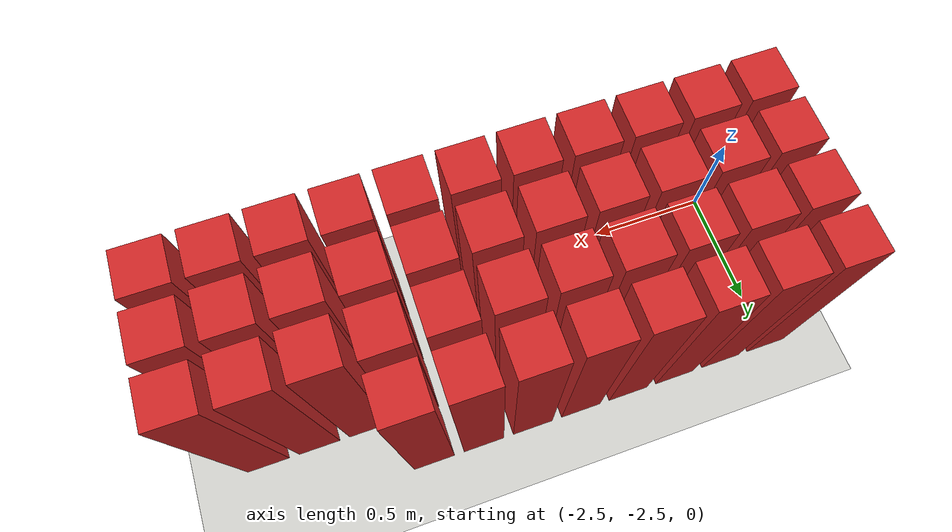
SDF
<sdf version="1.7">
 <world name="default">
  <model name="ground_plane">
   <static>1</static>
   <link name="link">
    <collision name="collision">
     <geometry><plane><normal>0 0 1</normal><size>100 100</size></plane></geometry>
     <surface>
      <contact><collide_bitmask>65535</collide_bitmask></contact>
      <friction><ode><mu>100</mu><mu2>50</mu2></ode></friction>
     </surface>
    </collision>
    <visual name="visual">
     <cast_shadows>0</cast_shadows>
     <geometry><plane><normal>0 0 1</normal><size>100 100</size></plane></geometry>
     <material>
      <script><uri>file://media/materials/scripts/gazebo.material</uri><name>Gazebo/CeilingTiled</name></script>
     </material>
    </visual>
   </link>
  </model>
  <model name="wall0">
   <link name="link">
    <pose>0 0 0.5 0 -0 0</pose>
    <inertial>
     <mass>0.5167</mass>
     <inertia>
      <ixx>0.000861167</ixx>
      <ixy>0</ixy>
      <ixz>0</ixz>
      <iyy>0.000861167</iyy>
      <iyz>0</iyz>
      <izz>0.000861167</izz>
     </inertia>
    </inertial>
    <collision name="collision">
     <geometry><box><size>0.21 0.21 1</size></box></geometry>
     <surface>
      <contact>
       <poissons_ratio>0.347</poissons_ratio>
       <elastic_modulus>8.8e+09</elastic_modulus>
       <ode><kp>100000</kp><kd>100</kd><max_vel>100</max_vel><min_depth>0.001</min_depth></ode>
      </contact>
      <friction>
       <torsional>
        <coefficient>1</coefficient>
        <use_patch_radius>0</use_patch_radius>
        <surface_radius>0.01</surface_radius>
       </torsional>
      </friction>
     </surface>
    </collision>
    <visual name="visual">
     <geometry><box><size>0.175 0.175 1</size></box></geometry>
     <material>
      <script><uri>file://media/materials/scripts/gazebo.material</uri><name>Gazebo/Red</name></script>
     </material>
    </visual>
   </link>
   <pose>-2.5 -2.5 0 0 -0 0</pose>
  </model>
  <model name="wall1">
   <link name="link">
    <pose>0 0 0.5 0 -0 0</pose>
    <inertial>
     <mass>0.5167</mass>
     <inertia>
      <ixx>0.000861167</ixx>
      <ixy>0</ixy>
      <ixz>0</ixz>
      <iyy>0.000861167</iyy>
      <iyz>0</iyz>
      <izz>0.000861167</izz>
     </inertia>
    </inertial>
    <collision name="collision">
     <geometry><box><size>0.21 0.21 1</size></box></geometry>
     <surface>
      <contact>
       <poissons_ratio>0.347</poissons_ratio>
       <elastic_modulus>8.8e+09</elastic_modulus>
       <ode><kp>100000</kp><kd>100</kd><max_vel>100</max_vel><min_depth>0.001</min_depth></ode>
      </contact>
      <friction>
       <torsional>
        <coefficient>1</coefficient>
        <use_patch_radius>0</use_patch_radius>
        <surface_radius>0.01</surface_radius>
       </torsional>
      </friction>
     </surface>
    </collision>
    <visual name="visual">
     <geometry><box><size>0.175 0.175 1</size></box></geometry>
     <material>
      <script><uri>file://media/materials/scripts/gazebo.material</uri><name>Gazebo/Red</name></script>
     </material>
    </visual>
   </link>
   <pose>-2.28261 -2.5 0 0 -0 0</pose>
  </model>
  <model name="wall2">
   <link name="link">
    <pose>0 0 0.5 0 -0 0</pose>
    <inertial>
     <mass>0.5167</mass>
     <inertia>
      <ixx>0.000861167</ixx>
      <ixy>0</ixy>
      <ixz>0</ixz>
      <iyy>0.000861167</iyy>
      <iyz>0</iyz>
      <izz>0.000861167</izz>
     </inertia>
    </inertial>
    <collision name="collision">
     <geometry><box><size>0.21 0.21 1</size></box></geometry>
     <surface>
      <contact>
       <poissons_ratio>0.347</poissons_ratio>
       <elastic_modulus>8.8e+09</elastic_modulus>
       <ode><kp>100000</kp><kd>100</kd><max_vel>100</max_vel><min_depth>0.001</min_depth></ode>
      </contact>
      <friction>
       <torsional>
        <coefficient>1</coefficient>
        <use_patch_radius>0</use_patch_radius>
        <surface_radius>0.01</surface_radius>
       </torsional>
      </friction>
     </surface>
    </collision>
    <visual name="visual">
     <geometry><box><size>0.175 0.175 1</size></box></geometry>
     <material>
      <script><uri>file://media/materials/scripts/gazebo.material</uri><name>Gazebo/Red</name></script>
     </material>
    </visual>
   </link>
   <pose>-2.06522 -2.5 0 0 -0 0</pose>
  </model>
  <model name="wall3">
   <link name="link">
    <pose>0 0 0.5 0 -0 0</pose>
    <inertial>
     <mass>0.5167</mass>
     <inertia>
      <ixx>0.000861167</ixx>
      <ixy>0</ixy>
      <ixz>0</ixz>
      <iyy>0.000861167</iyy>
      <iyz>0</iyz>
      <izz>0.000861167</izz>
     </inertia>
    </inertial>
    <collision name="collision">
     <geometry><box><size>0.21 0.21 1</size></box></geometry>
     <surface>
      <contact>
       <poissons_ratio>0.347</poissons_ratio>
       <elastic_modulus>8.8e+09</elastic_modulus>
       <ode><kp>100000</kp><kd>100</kd><max_vel>100</max_vel><min_depth>0.001</min_depth></ode>
      </contact>
      <friction>
       <torsional>
        <coefficient>1</coefficient>
        <use_patch_radius>0</use_patch_radius>
        <surface_radius>0.01</surface_radius>
       </torsional>
      </friction>
     </surface>
    </collision>
    <visual name="visual">
     <geometry><box><size>0.175 0.175 1</size></box></geometry>
     <material>
      <script><uri>file://media/materials/scripts/gazebo.material</uri><name>Gazebo/Red</name></script>
     </material>
    </visual>
   </link>
   <pose>-1.84783 -2.5 0 0 -0 0</pose>
  </model>
  <model name="wall4">
   <link name="link">
    <pose>0 0 0.5 0 -0 0</pose>
    <inertial>
     <mass>0.5167</mass>
     <inertia>
      <ixx>0.000861167</ixx>
      <ixy>0</ixy>
      <ixz>0</ixz>
      <iyy>0.000861167</iyy>
      <iyz>0</iyz>
      <izz>0.000861167</izz>
     </inertia>
    </inertial>
    <collision name="collision">
     <geometry><box><size>0.21 0.21 1</size></box></geometry>
     <surface>
      <contact>
       <poissons_ratio>0.347</poissons_ratio>
       <elastic_modulus>8.8e+09</elastic_modulus>
       <ode><kp>100000</kp><kd>100</kd><max_vel>100</max_vel><min_depth>0.001</min_depth></ode>
      </contact>
      <friction>
       <torsional>
        <coefficient>1</coefficient>
        <use_patch_radius>0</use_patch_radius>
        <surface_radius>0.01</surface_radius>
       </torsional>
      </friction>
     </surface>
    </collision>
    <visual name="visual">
     <geometry><box><size>0.175 0.175 1</size></box></geometry>
     <material>
      <script><uri>file://media/materials/scripts/gazebo.material</uri><name>Gazebo/Red</name></script>
     </material>
    </visual>
   </link>
   <pose>-1.63043 -2.5 0 0 -0 0</pose>
  </model>
  <model name="wall5">
   <link name="link">
    <pose>0 0 0.5 0 -0 0</pose>
    <inertial>
     <mass>0.5167</mass>
     <inertia>
      <ixx>0.000861167</ixx>
      <ixy>0</ixy>
      <ixz>0</ixz>
      <iyy>0.000861167</iyy>
      <iyz>0</iyz>
      <izz>0.000861167</izz>
     </inertia>
    </inertial>
    <collision name="collision">
     <geometry><box><size>0.21 0.21 1</size></box></geometry>
     <surface>
      <contact>
       <poissons_ratio>0.347</poissons_ratio>
       <elastic_modulus>8.8e+09</elastic_modulus>
       <ode><kp>100000</kp><kd>100</kd><max_vel>100</max_vel><min_depth>0.001</min_depth></ode>
      </contact>
      <friction>
       <torsional>
        <coefficient>1</coefficient>
        <use_patch_radius>0</use_patch_radius>
        <surface_radius>0.01</surface_radius>
       </torsional>
      </friction>
     </surface>
    </collision>
    <visual name="visual">
     <geometry><box><size>0.175 0.175 1</size></box></geometry>
     <material>
      <script><uri>file://media/materials/scripts/gazebo.material</uri><name>Gazebo/Red</name></script>
     </material>
    </visual>
   </link>
   <pose>-1.41304 -2.5 0 0 -0 0</pose>
  </model>
  <model name="wall6">
   <link name="link">
    <pose>0 0 0.5 0 -0 0</pose>
    <inertial>
     <mass>0.5167</mass>
     <inertia>
      <ixx>0.000861167</ixx>
      <ixy>0</ixy>
      <ixz>0</ixz>
      <iyy>0.000861167</iyy>
      <iyz>0</iyz>
      <izz>0.000861167</izz>
     </inertia>
    </inertial>
    <collision name="collision">
     <geometry><box><size>0.21 0.21 1</size></box></geometry>
     <surface>
      <contact>
       <poissons_ratio>0.347</poissons_ratio>
       <elastic_modulus>8.8e+09</elastic_modulus>
       <ode><kp>100000</kp><kd>100</kd><max_vel>100</max_vel><min_depth>0.001</min_depth></ode>
      </contact>
      <friction>
       <torsional>
        <coefficient>1</coefficient>
        <use_patch_radius>0</use_patch_radius>
        <surface_radius>0.01</surface_radius>
       </torsional>
      </friction>
     </surface>
    </collision>
    <visual name="visual">
     <geometry><box><size>0.175 0.175 1</size></box></geometry>
     <material>
      <script><uri>file://media/materials/scripts/gazebo.material</uri><name>Gazebo/Red</name></script>
     </material>
    </visual>
   </link>
   <pose>-1.19565 -2.5 0 0 -0 0</pose>
  </model>
  <model name="wall7">
   <link name="link">
    <pose>0 0 0.5 0 -0 0</pose>
    <inertial>
     <mass>0.5167</mass>
     <inertia>
      <ixx>0.000861167</ixx>
      <ixy>0</ixy>
      <ixz>0</ixz>
      <iyy>0.000861167</iyy>
      <iyz>0</iyz>
      <izz>0.000861167</izz>
     </inertia>
    </inertial>
    <collision name="collision">
     <geometry><box><size>0.21 0.21 1</size></box></geometry>
     <surface>
      <contact>
       <poissons_ratio>0.347</poissons_ratio>
       <elastic_modulus>8.8e+09</elastic_modulus>
       <ode><kp>100000</kp><kd>100</kd><max_vel>100</max_vel><min_depth>0.001</min_depth></ode>
      </contact>
      <friction>
       <torsional>
        <coefficient>1</coefficient>
        <use_patch_radius>0</use_patch_radius>
        <surface_radius>0.01</surface_radius>
       </torsional>
      </friction>
     </surface>
    </collision>
    <visual name="visual">
     <geometry><box><size>0.175 0.175 1</size></box></geometry>
     <material>
      <script><uri>file://media/materials/scripts/gazebo.material</uri><name>Gazebo/Red</name></script>
     </material>
    </visual>
   </link>
   <pose>-0.978261 -2.5 0 0 -0 0</pose>
  </model>
  <model name="wall8">
   <link name="link">
    <pose>0 0 0.5 0 -0 0</pose>
    <inertial>
     <mass>0.5167</mass>
     <inertia>
      <ixx>0.000861167</ixx>
      <ixy>0</ixy>
      <ixz>0</ixz>
      <iyy>0.000861167</iyy>
      <iyz>0</iyz>
      <izz>0.000861167</izz>
     </inertia>
    </inertial>
    <collision name="collision">
     <geometry><box><size>0.21 0.21 1</size></box></geometry>
     <surface>
      <contact>
       <poissons_ratio>0.347</poissons_ratio>
       <elastic_modulus>8.8e+09</elastic_modulus>
       <ode><kp>100000</kp><kd>100</kd><max_vel>100</max_vel><min_depth>0.001</min_depth></ode>
      </contact>
      <friction>
       <torsional>
        <coefficient>1</coefficient>
        <use_patch_radius>0</use_patch_radius>
        <surface_radius>0.01</surface_radius>
       </torsional>
      </friction>
     </surface>
    </collision>
    <visual name="visual">
     <geometry><box><size>0.175 0.175 1</size></box></geometry>
     <material>
      <script><uri>file://media/materials/scripts/gazebo.material</uri><name>Gazebo/Red</name></script>
     </material>
    </visual>
   </link>
   <pose>-0.76087 -2.5 0 0 -0 0</pose>
  </model>
  <model name="wall9">
   <link name="link">
    <pose>0 0 0.5 0 -0 0</pose>
    <inertial>
     <mass>0.5167</mass>
     <inertia>
      <ixx>0.000861167</ixx>
      <ixy>0</ixy>
      <ixz>0</ixz>
      <iyy>0.000861167</iyy>
      <iyz>0</iyz>
      <izz>0.000861167</izz>
     </inertia>
    </inertial>
    <collision name="collision">
     <geometry><box><size>0.21 0.21 1</size></box></geometry>
     <surface>
      <contact>
       <poissons_ratio>0.347</poissons_ratio>
       <elastic_modulus>8.8e+09</elastic_modulus>
       <ode><kp>100000</kp><kd>100</kd><max_vel>100</max_vel><min_depth>0.001</min_depth></ode>
      </contact>
      <friction>
       <torsional>
        <coefficient>1</coefficient>
        <use_patch_radius>0</use_patch_radius>
        <surface_radius>0.01</surface_radius>
       </torsional>
      </friction>
     </surface>
    </collision>
    <visual name="visual">
     <geometry><box><size>0.175 0.175 1</size></box></geometry>
     <material>
      <script><uri>file://media/materials/scripts/gazebo.material</uri><name>Gazebo/Red</name></script>
     </material>
    </visual>
   </link>
   <pose>-0.543478 -2.5 0 0 -0 0</pose>
  </model>
  <model name="wall10">
   <link name="link">
    <pose>0 0 0.5 0 -0 0</pose>
    <inertial>
     <mass>0.5167</mass>
     <inertia>
      <ixx>0.000861167</ixx>
      <ixy>0</ixy>
      <ixz>0</ixz>
      <iyy>0.000861167</iyy>
      <iyz>0</iyz>
      <izz>0.000861167</izz>
     </inertia>
    </inertial>
    <collision name="collision">
     <geometry><box><size>0.21 0.21 1</size></box></geometry>
     <surface>
      <contact>
       <poissons_ratio>0.347</poissons_ratio>
       <elastic_modulus>8.8e+09</elastic_modulus>
       <ode><kp>100000</kp><kd>100</kd><max_vel>100</max_vel><min_depth>0.001</min_depth></ode>
      </contact>
      <friction>
       <torsional>
        <coefficient>1</coefficient>
        <use_patch_radius>0</use_patch_radius>
        <surface_radius>0.01</surface_radius>
       </torsional>
      </friction>
     </surface>
    </collision>
    <visual name="visual">
     <geometry><box><size>0.175 0.175 1</size></box></geometry>
     <material>
      <script><uri>file://media/materials/scripts/gazebo.material</uri><name>Gazebo/Red</name></script>
     </material>
    </visual>
   </link>
   <pose>-0.326087 -2.5 0 0 -0 0</pose>
  </model>
  <model name="wall23">
   <link name="link">
    <pose>0 0 0.5 0 -0 0</pose>
    <inertial>
     <mass>0.5167</mass>
     <inertia>
      <ixx>0.000861167</ixx>
      <ixy>0</ixy>
      <ixz>0</ixz>
      <iyy>0.000861167</iyy>
      <iyz>0</iyz>
      <izz>0.000861167</izz>
     </inertia>
    </inertial>
    <collision name="collision">
     <geometry><box><size>0.21 0.21 1</size></box></geometry>
     <surface>
      <contact>
       <poissons_ratio>0.347</poissons_ratio>
       <elastic_modulus>8.8e+09</elastic_modulus>
       <ode><kp>100000</kp><kd>100</kd><max_vel>100</max_vel><min_depth>0.001</min_depth></ode>
      </contact>
      <friction>
       <torsional>
        <coefficient>1</coefficient>
        <use_patch_radius>0</use_patch_radius>
        <surface_radius>0.01</surface_radius>
       </torsional>
      </friction>
     </surface>
    </collision>
    <visual name="visual">
     <geometry><box><size>0.175 0.175 1</size></box></geometry>
     <material>
      <script><uri>file://media/materials/scripts/gazebo.material</uri><name>Gazebo/Red</name></script>
     </material>
    </visual>
   </link>
   <pose>-2.5 -2.28261 0 0 -0 0</pose>
  </model>
  <model name="wall24">
   <link name="link">
    <pose>0 0 0.5 0 -0 0</pose>
    <inertial>
     <mass>0.5167</mass>
     <inertia>
      <ixx>0.000861167</ixx>
      <ixy>0</ixy>
      <ixz>0</ixz>
      <iyy>0.000861167</iyy>
      <iyz>0</iyz>
      <izz>0.000861167</izz>
     </inertia>
    </inertial>
    <collision name="collision">
     <geometry><box><size>0.21 0.21 1</size></box></geometry>
     <surface>
      <contact>
       <poissons_ratio>0.347</poissons_ratio>
       <elastic_modulus>8.8e+09</elastic_modulus>
       <ode><kp>100000</kp><kd>100</kd><max_vel>100</max_vel><min_depth>0.001</min_depth></ode>
      </contact>
      <friction>
       <torsional>
        <coefficient>1</coefficient>
        <use_patch_radius>0</use_patch_radius>
        <surface_radius>0.01</surface_radius>
       </torsional>
      </friction>
     </surface>
    </collision>
    <visual name="visual">
     <geometry><box><size>0.175 0.175 1</size></box></geometry>
     <material>
      <script><uri>file://media/materials/scripts/gazebo.material</uri><name>Gazebo/Red</name></script>
     </material>
    </visual>
   </link>
   <pose>-2.28261 -2.28261 0 0 -0 0</pose>
  </model>
  <model name="wall25">
   <link name="link">
    <pose>0 0 0.5 0 -0 0</pose>
    <inertial>
     <mass>0.5167</mass>
     <inertia>
      <ixx>0.000861167</ixx>
      <ixy>0</ixy>
      <ixz>0</ixz>
      <iyy>0.000861167</iyy>
      <iyz>0</iyz>
      <izz>0.000861167</izz>
     </inertia>
    </inertial>
    <collision name="collision">
     <geometry><box><size>0.21 0.21 1</size></box></geometry>
     <surface>
      <contact>
       <poissons_ratio>0.347</poissons_ratio>
       <elastic_modulus>8.8e+09</elastic_modulus>
       <ode><kp>100000</kp><kd>100</kd><max_vel>100</max_vel><min_depth>0.001</min_depth></ode>
      </contact>
      <friction>
       <torsional>
        <coefficient>1</coefficient>
        <use_patch_radius>0</use_patch_radius>
        <surface_radius>0.01</surface_radius>
       </torsional>
      </friction>
     </surface>
    </collision>
    <visual name="visual">
     <geometry><box><size>0.175 0.175 1</size></box></geometry>
     <material>
      <script><uri>file://media/materials/scripts/gazebo.material</uri><name>Gazebo/Red</name></script>
     </material>
    </visual>
   </link>
   <pose>-2.06522 -2.28261 0 0 -0 0</pose>
  </model>
  <model name="wall26">
   <link name="link">
    <pose>0 0 0.5 0 -0 0</pose>
    <inertial>
     <mass>0.5167</mass>
     <inertia>
      <ixx>0.000861167</ixx>
      <ixy>0</ixy>
      <ixz>0</ixz>
      <iyy>0.000861167</iyy>
      <iyz>0</iyz>
      <izz>0.000861167</izz>
     </inertia>
    </inertial>
    <collision name="collision">
     <geometry><box><size>0.21 0.21 1</size></box></geometry>
     <surface>
      <contact>
       <poissons_ratio>0.347</poissons_ratio>
       <elastic_modulus>8.8e+09</elastic_modulus>
       <ode><kp>100000</kp><kd>100</kd><max_vel>100</max_vel><min_depth>0.001</min_depth></ode>
      </contact>
      <friction>
       <torsional>
        <coefficient>1</coefficient>
        <use_patch_radius>0</use_patch_radius>
        <surface_radius>0.01</surface_radius>
       </torsional>
      </friction>
     </surface>
    </collision>
    <visual name="visual">
     <geometry><box><size>0.175 0.175 1</size></box></geometry>
     <material>
      <script><uri>file://media/materials/scripts/gazebo.material</uri><name>Gazebo/Red</name></script>
     </material>
    </visual>
   </link>
   <pose>-1.84783 -2.28261 0 0 -0 0</pose>
  </model>
  <model name="wall27">
   <link name="link">
    <pose>0 0 0.5 0 -0 0</pose>
    <inertial>
     <mass>0.5167</mass>
     <inertia>
      <ixx>0.000861167</ixx>
      <ixy>0</ixy>
      <ixz>0</ixz>
      <iyy>0.000861167</iyy>
      <iyz>0</iyz>
      <izz>0.000861167</izz>
     </inertia>
    </inertial>
    <collision name="collision">
     <geometry><box><size>0.21 0.21 1</size></box></geometry>
     <surface>
      <contact>
       <poissons_ratio>0.347</poissons_ratio>
       <elastic_modulus>8.8e+09</elastic_modulus>
       <ode><kp>100000</kp><kd>100</kd><max_vel>100</max_vel><min_depth>0.001</min_depth></ode>
      </contact>
      <friction>
       <torsional>
        <coefficient>1</coefficient>
        <use_patch_radius>0</use_patch_radius>
        <surface_radius>0.01</surface_radius>
       </torsional>
      </friction>
     </surface>
    </collision>
    <visual name="visual">
     <geometry><box><size>0.175 0.175 1</size></box></geometry>
     <material>
      <script><uri>file://media/materials/scripts/gazebo.material</uri><name>Gazebo/Red</name></script>
     </material>
    </visual>
   </link>
   <pose>-1.63043 -2.28261 0 0 -0 0</pose>
  </model>
  <model name="wall28">
   <link name="link">
    <pose>0 0 0.5 0 -0 0</pose>
    <inertial>
     <mass>0.5167</mass>
     <inertia>
      <ixx>0.000861167</ixx>
      <ixy>0</ixy>
      <ixz>0</ixz>
      <iyy>0.000861167</iyy>
      <iyz>0</iyz>
      <izz>0.000861167</izz>
     </inertia>
    </inertial>
    <collision name="collision">
     <geometry><box><size>0.21 0.21 1</size></box></geometry>
     <surface>
      <contact>
       <poissons_ratio>0.347</poissons_ratio>
       <elastic_modulus>8.8e+09</elastic_modulus>
       <ode><kp>100000</kp><kd>100</kd><max_vel>100</max_vel><min_depth>0.001</min_depth></ode>
      </contact>
      <friction>
       <torsional>
        <coefficient>1</coefficient>
        <use_patch_radius>0</use_patch_radius>
        <surface_radius>0.01</surface_radius>
       </torsional>
      </friction>
     </surface>
    </collision>
    <visual name="visual">
     <geometry><box><size>0.175 0.175 1</size></box></geometry>
     <material>
      <script><uri>file://media/materials/scripts/gazebo.material</uri><name>Gazebo/Red</name></script>
     </material>
    </visual>
   </link>
   <pose>-1.41304 -2.28261 0 0 -0 0</pose>
  </model>
  <model name="wall29">
   <link name="link">
    <pose>0 0 0.5 0 -0 0</pose>
    <inertial>
     <mass>0.5167</mass>
     <inertia>
      <ixx>0.000861167</ixx>
      <ixy>0</ixy>
      <ixz>0</ixz>
      <iyy>0.000861167</iyy>
      <iyz>0</iyz>
      <izz>0.000861167</izz>
     </inertia>
    </inertial>
    <collision name="collision">
     <geometry><box><size>0.21 0.21 1</size></box></geometry>
     <surface>
      <contact>
       <poissons_ratio>0.347</poissons_ratio>
       <elastic_modulus>8.8e+09</elastic_modulus>
       <ode><kp>100000</kp><kd>100</kd><max_vel>100</max_vel><min_depth>0.001</min_depth></ode>
      </contact>
      <friction>
       <torsional>
        <coefficient>1</coefficient>
        <use_patch_radius>0</use_patch_radius>
        <surface_radius>0.01</surface_radius>
       </torsional>
      </friction>
     </surface>
    </collision>
    <visual name="visual">
     <geometry><box><size>0.175 0.175 1</size></box></geometry>
     <material>
      <script><uri>file://media/materials/scripts/gazebo.material</uri><name>Gazebo/Red</name></script>
     </material>
    </visual>
   </link>
   <pose>-1.19565 -2.28261 0 0 -0 0</pose>
  </model>
  <model name="wall30">
   <link name="link">
    <pose>0 0 0.5 0 -0 0</pose>
    <inertial>
     <mass>0.5167</mass>
     <inertia>
      <ixx>0.000861167</ixx>
      <ixy>0</ixy>
      <ixz>0</ixz>
      <iyy>0.000861167</iyy>
      <iyz>0</iyz>
      <izz>0.000861167</izz>
     </inertia>
    </inertial>
    <collision name="collision">
     <geometry><box><size>0.21 0.21 1</size></box></geometry>
     <surface>
      <contact>
       <poissons_ratio>0.347</poissons_ratio>
       <elastic_modulus>8.8e+09</elastic_modulus>
       <ode><kp>100000</kp><kd>100</kd><max_vel>100</max_vel><min_depth>0.001</min_depth></ode>
      </contact>
      <friction>
       <torsional>
        <coefficient>1</coefficient>
        <use_patch_radius>0</use_patch_radius>
        <surface_radius>0.01</surface_radius>
       </torsional>
      </friction>
     </surface>
    </collision>
    <visual name="visual">
     <geometry><box><size>0.175 0.175 1</size></box></geometry>
     <material>
      <script><uri>file://media/materials/scripts/gazebo.material</uri><name>Gazebo/Red</name></script>
     </material>
    </visual>
   </link>
   <pose>-0.978261 -2.28261 0 0 -0 0</pose>
  </model>
  <model name="wall31">
   <link name="link">
    <pose>0 0 0.5 0 -0 0</pose>
    <inertial>
     <mass>0.5167</mass>
     <inertia>
      <ixx>0.000861167</ixx>
      <ixy>0</ixy>
      <ixz>0</ixz>
      <iyy>0.000861167</iyy>
      <iyz>0</iyz>
      <izz>0.000861167</izz>
     </inertia>
    </inertial>
    <collision name="collision">
     <geometry><box><size>0.21 0.21 1</size></box></geometry>
     <surface>
      <contact>
       <poissons_ratio>0.347</poissons_ratio>
       <elastic_modulus>8.8e+09</elastic_modulus>
       <ode><kp>100000</kp><kd>100</kd><max_vel>100</max_vel><min_depth>0.001</min_depth></ode>
      </contact>
      <friction>
       <torsional>
        <coefficient>1</coefficient>
        <use_patch_radius>0</use_patch_radius>
        <surface_radius>0.01</surface_radius>
       </torsional>
      </friction>
     </surface>
    </collision>
    <visual name="visual">
     <geometry><box><size>0.175 0.175 1</size></box></geometry>
     <material>
      <script><uri>file://media/materials/scripts/gazebo.material</uri><name>Gazebo/Red</name></script>
     </material>
    </visual>
   </link>
   <pose>-0.76087 -2.28261 0 0 -0 0</pose>
  </model>
  <model name="wall32">
   <link name="link">
    <pose>0 0 0.5 0 -0 0</pose>
    <inertial>
     <mass>0.5167</mass>
     <inertia>
      <ixx>0.000861167</ixx>
      <ixy>0</ixy>
      <ixz>0</ixz>
      <iyy>0.000861167</iyy>
      <iyz>0</iyz>
      <izz>0.000861167</izz>
     </inertia>
    </inertial>
    <collision name="collision">
     <geometry><box><size>0.21 0.21 1</size></box></geometry>
     <surface>
      <contact>
       <poissons_ratio>0.347</poissons_ratio>
       <elastic_modulus>8.8e+09</elastic_modulus>
       <ode><kp>100000</kp><kd>100</kd><max_vel>100</max_vel><min_depth>0.001</min_depth></ode>
      </contact>
      <friction>
       <torsional>
        <coefficient>1</coefficient>
        <use_patch_radius>0</use_patch_radius>
        <surface_radius>0.01</surface_radius>
       </torsional>
      </friction>
     </surface>
    </collision>
    <visual name="visual">
     <geometry><box><size>0.175 0.175 1</size></box></geometry>
     <material>
      <script><uri>file://media/materials/scripts/gazebo.material</uri><name>Gazebo/Red</name></script>
     </material>
    </visual>
   </link>
   <pose>-0.543478 -2.28261 0 0 -0 0</pose>
  </model>
  <model name="wall33">
   <link name="link">
    <pose>0 0 0.5 0 -0 0</pose>
    <inertial>
     <mass>0.5167</mass>
     <inertia>
      <ixx>0.000861167</ixx>
      <ixy>0</ixy>
      <ixz>0</ixz>
      <iyy>0.000861167</iyy>
      <iyz>0</iyz>
      <izz>0.000861167</izz>
     </inertia>
    </inertial>
    <collision name="collision">
     <geometry><box><size>0.21 0.21 1</size></box></geometry>
     <surface>
      <contact>
       <poissons_ratio>0.347</poissons_ratio>
       <elastic_modulus>8.8e+09</elastic_modulus>
       <ode><kp>100000</kp><kd>100</kd><max_vel>100</max_vel><min_depth>0.001</min_depth></ode>
      </contact>
      <friction>
       <torsional>
        <coefficient>1</coefficient>
        <use_patch_radius>0</use_patch_radius>
        <surface_radius>0.01</surface_radius>
       </torsional>
      </friction>
     </surface>
    </collision>
    <visual name="visual">
     <geometry><box><size>0.175 0.175 1</size></box></geometry>
     <material>
      <script><uri>file://media/materials/scripts/gazebo.material</uri><name>Gazebo/Red</name></script>
     </material>
    </visual>
   </link>
   <pose>-0.326087 -2.28261 0 0 -0 0</pose>
  </model>
  <model name="wall46">
   <link name="link">
    <pose>0 0 0.5 0 -0 0</pose>
    <inertial>
     <mass>0.5167</mass>
     <inertia>
      <ixx>0.000861167</ixx>
      <ixy>0</ixy>
      <ixz>0</ixz>
      <iyy>0.000861167</iyy>
      <iyz>0</iyz>
      <izz>0.000861167</izz>
     </inertia>
    </inertial>
    <collision name="collision">
     <geometry><box><size>0.21 0.21 1</size></box></geometry>
     <surface>
      <contact>
       <poissons_ratio>0.347</poissons_ratio>
       <elastic_modulus>8.8e+09</elastic_modulus>
       <ode><kp>100000</kp><kd>100</kd><max_vel>100</max_vel><min_depth>0.001</min_depth></ode>
      </contact>
      <friction>
       <torsional>
        <coefficient>1</coefficient>
        <use_patch_radius>0</use_patch_radius>
        <surface_radius>0.01</surface_radius>
       </torsional>
      </friction>
     </surface>
    </collision>
    <visual name="visual">
     <geometry><box><size>0.175 0.175 1</size></box></geometry>
     <material>
      <script><uri>file://media/materials/scripts/gazebo.material</uri><name>Gazebo/Red</name></script>
     </material>
    </visual>
   </link>
   <pose>-2.5 -2.06522 0 0 -0 0</pose>
  </model>
  <model name="wall47">
   <link name="link">
    <pose>0 0 0.5 0 -0 0</pose>
    <inertial>
     <mass>0.5167</mass>
     <inertia>
      <ixx>0.000861167</ixx>
      <ixy>0</ixy>
      <ixz>0</ixz>
      <iyy>0.000861167</iyy>
      <iyz>0</iyz>
      <izz>0.000861167</izz>
     </inertia>
    </inertial>
    <collision name="collision">
     <geometry><box><size>0.21 0.21 1</size></box></geometry>
     <surface>
      <contact>
       <poissons_ratio>0.347</poissons_ratio>
       <elastic_modulus>8.8e+09</elastic_modulus>
       <ode><kp>100000</kp><kd>100</kd><max_vel>100</max_vel><min_depth>0.001</min_depth></ode>
      </contact>
      <friction>
       <torsional>
        <coefficient>1</coefficient>
        <use_patch_radius>0</use_patch_radius>
        <surface_radius>0.01</surface_radius>
       </torsional>
      </friction>
     </surface>
    </collision>
    <visual name="visual">
     <geometry><box><size>0.175 0.175 1</size></box></geometry>
     <material>
      <script><uri>file://media/materials/scripts/gazebo.material</uri><name>Gazebo/Red</name></script>
     </material>
    </visual>
   </link>
   <pose>-2.28261 -2.06522 0 0 -0 0</pose>
  </model>
  <model name="wall48">
   <link name="link">
    <pose>0 0 0.5 0 -0 0</pose>
    <inertial>
     <mass>0.5167</mass>
     <inertia>
      <ixx>0.000861167</ixx>
      <ixy>0</ixy>
      <ixz>0</ixz>
      <iyy>0.000861167</iyy>
      <iyz>0</iyz>
      <izz>0.000861167</izz>
     </inertia>
    </inertial>
    <collision name="collision">
     <geometry><box><size>0.21 0.21 1</size></box></geometry>
     <surface>
      <contact>
       <poissons_ratio>0.347</poissons_ratio>
       <elastic_modulus>8.8e+09</elastic_modulus>
       <ode><kp>100000</kp><kd>100</kd><max_vel>100</max_vel><min_depth>0.001</min_depth></ode>
      </contact>
      <friction>
       <torsional>
        <coefficient>1</coefficient>
        <use_patch_radius>0</use_patch_radius>
        <surface_radius>0.01</surface_radius>
       </torsional>
      </friction>
     </surface>
    </collision>
    <visual name="visual">
     <geometry><box><size>0.175 0.175 1</size></box></geometry>
     <material>
      <script><uri>file://media/materials/scripts/gazebo.material</uri><name>Gazebo/Red</name></script>
     </material>
    </visual>
   </link>
   <pose>-2.06522 -2.06522 0 0 -0 0</pose>
  </model>
  <model name="wall49">
   <link name="link">
    <pose>0 0 0.5 0 -0 0</pose>
    <inertial>
     <mass>0.5167</mass>
     <inertia>
      <ixx>0.000861167</ixx>
      <ixy>0</ixy>
      <ixz>0</ixz>
      <iyy>0.000861167</iyy>
      <iyz>0</iyz>
      <izz>0.000861167</izz>
     </inertia>
    </inertial>
    <collision name="collision">
     <geometry><box><size>0.21 0.21 1</size></box></geometry>
     <surface>
      <contact>
       <poissons_ratio>0.347</poissons_ratio>
       <elastic_modulus>8.8e+09</elastic_modulus>
       <ode><kp>100000</kp><kd>100</kd><max_vel>100</max_vel><min_depth>0.001</min_depth></ode>
      </contact>
      <friction>
       <torsional>
        <coefficient>1</coefficient>
        <use_patch_radius>0</use_patch_radius>
        <surface_radius>0.01</surface_radius>
       </torsional>
      </friction>
     </surface>
    </collision>
    <visual name="visual">
     <geometry><box><size>0.175 0.175 1</size></box></geometry>
     <material>
      <script><uri>file://media/materials/scripts/gazebo.material</uri><name>Gazebo/Red</name></script>
     </material>
    </visual>
   </link>
   <pose>-1.84783 -2.06522 0 0 -0 0</pose>
  </model>
  <model name="wall50">
   <link name="link">
    <pose>0 0 0.5 0 -0 0</pose>
    <inertial>
     <mass>0.5167</mass>
     <inertia>
      <ixx>0.000861167</ixx>
      <ixy>0</ixy>
      <ixz>0</ixz>
      <iyy>0.000861167</iyy>
      <iyz>0</iyz>
      <izz>0.000861167</izz>
     </inertia>
    </inertial>
    <collision name="collision">
     <geometry><box><size>0.21 0.21 1</size></box></geometry>
     <surface>
      <contact>
       <poissons_ratio>0.347</poissons_ratio>
       <elastic_modulus>8.8e+09</elastic_modulus>
       <ode><kp>100000</kp><kd>100</kd><max_vel>100</max_vel><min_depth>0.001</min_depth></ode>
      </contact>
      <friction>
       <torsional>
        <coefficient>1</coefficient>
        <use_patch_radius>0</use_patch_radius>
        <surface_radius>0.01</surface_radius>
       </torsional>
      </friction>
     </surface>
    </collision>
    <visual name="visual">
     <geometry><box><size>0.175 0.175 1</size></box></geometry>
     <material>
      <script><uri>file://media/materials/scripts/gazebo.material</uri><name>Gazebo/Red</name></script>
     </material>
    </visual>
   </link>
   <pose>-1.63043 -2.06522 0 0 -0 0</pose>
  </model>
  <model name="wall51">
   <link name="link">
    <pose>0 0 0.5 0 -0 0</pose>
    <inertial>
     <mass>0.5167</mass>
     <inertia>
      <ixx>0.000861167</ixx>
      <ixy>0</ixy>
      <ixz>0</ixz>
      <iyy>0.000861167</iyy>
      <iyz>0</iyz>
      <izz>0.000861167</izz>
     </inertia>
    </inertial>
    <collision name="collision">
     <geometry><box><size>0.21 0.21 1</size></box></geometry>
     <surface>
      <contact>
       <poissons_ratio>0.347</poissons_ratio>
       <elastic_modulus>8.8e+09</elastic_modulus>
       <ode><kp>100000</kp><kd>100</kd><max_vel>100</max_vel><min_depth>0.001</min_depth></ode>
      </contact>
      <friction>
       <torsional>
        <coefficient>1</coefficient>
        <use_patch_radius>0</use_patch_radius>
        <surface_radius>0.01</surface_radius>
       </torsional>
      </friction>
     </surface>
    </collision>
    <visual name="visual">
     <geometry><box><size>0.175 0.175 1</size></box></geometry>
     <material>
      <script><uri>file://media/materials/scripts/gazebo.material</uri><name>Gazebo/Red</name></script>
     </material>
    </visual>
   </link>
   <pose>-1.41304 -2.06522 0 0 -0 0</pose>
  </model>
  <model name="wall52">
   <link name="link">
    <pose>0 0 0.5 0 -0 0</pose>
    <inertial>
     <mass>0.5167</mass>
     <inertia>
      <ixx>0.000861167</ixx>
      <ixy>0</ixy>
      <ixz>0</ixz>
      <iyy>0.000861167</iyy>
      <iyz>0</iyz>
      <izz>0.000861167</izz>
     </inertia>
    </inertial>
    <collision name="collision">
     <geometry><box><size>0.21 0.21 1</size></box></geometry>
     <surface>
      <contact>
       <poissons_ratio>0.347</poissons_ratio>
       <elastic_modulus>8.8e+09</elastic_modulus>
       <ode><kp>100000</kp><kd>100</kd><max_vel>100</max_vel><min_depth>0.001</min_depth></ode>
      </contact>
      <friction>
       <torsional>
        <coefficient>1</coefficient>
        <use_patch_radius>0</use_patch_radius>
        <surface_radius>0.01</surface_radius>
       </torsional>
      </friction>
     </surface>
    </collision>
    <visual name="visual">
     <geometry><box><size>0.175 0.175 1</size></box></geometry>
     <material>
      <script><uri>file://media/materials/scripts/gazebo.material</uri><name>Gazebo/Red</name></script>
     </material>
    </visual>
   </link>
   <pose>-1.19565 -2.06522 0 0 -0 0</pose>
  </model>
  <model name="wall53">
   <link name="link">
    <pose>0 0 0.5 0 -0 0</pose>
    <inertial>
     <mass>0.5167</mass>
     <inertia>
      <ixx>0.000861167</ixx>
      <ixy>0</ixy>
      <ixz>0</ixz>
      <iyy>0.000861167</iyy>
      <iyz>0</iyz>
      <izz>0.000861167</izz>
     </inertia>
    </inertial>
    <collision name="collision">
     <geometry><box><size>0.21 0.21 1</size></box></geometry>
     <surface>
      <contact>
       <poissons_ratio>0.347</poissons_ratio>
       <elastic_modulus>8.8e+09</elastic_modulus>
       <ode><kp>100000</kp><kd>100</kd><max_vel>100</max_vel><min_depth>0.001</min_depth></ode>
      </contact>
      <friction>
       <torsional>
        <coefficient>1</coefficient>
        <use_patch_radius>0</use_patch_radius>
        <surface_radius>0.01</surface_radius>
       </torsional>
      </friction>
     </surface>
    </collision>
    <visual name="visual">
     <geometry><box><size>0.175 0.175 1</size></box></geometry>
     <material>
      <script><uri>file://media/materials/scripts/gazebo.material</uri><name>Gazebo/Red</name></script>
     </material>
    </visual>
   </link>
   <pose>-0.978261 -2.06522 0 0 -0 0</pose>
  </model>
  <model name="wall54">
   <link name="link">
    <pose>0 0 0.5 0 -0 0</pose>
    <inertial>
     <mass>0.5167</mass>
     <inertia>
      <ixx>0.000861167</ixx>
      <ixy>0</ixy>
      <ixz>0</ixz>
      <iyy>0.000861167</iyy>
      <iyz>0</iyz>
      <izz>0.000861167</izz>
     </inertia>
    </inertial>
    <collision name="collision">
     <geometry><box><size>0.21 0.21 1</size></box></geometry>
     <surface>
      <contact>
       <poissons_ratio>0.347</poissons_ratio>
       <elastic_modulus>8.8e+09</elastic_modulus>
       <ode><kp>100000</kp><kd>100</kd><max_vel>100</max_vel><min_depth>0.001</min_depth></ode>
      </contact>
      <friction>
       <torsional>
        <coefficient>1</coefficient>
        <use_patch_radius>0</use_patch_radius>
        <surface_radius>0.01</surface_radius>
       </torsional>
      </friction>
     </surface>
    </collision>
    <visual name="visual">
     <geometry><box><size>0.175 0.175 1</size></box></geometry>
     <material>
      <script><uri>file://media/materials/scripts/gazebo.material</uri><name>Gazebo/Red</name></script>
     </material>
    </visual>
   </link>
   <pose>-0.76087 -2.06522 0 0 -0 0</pose>
  </model>
  <model name="wall55">
   <link name="link">
    <pose>0 0 0.5 0 -0 0</pose>
    <inertial>
     <mass>0.5167</mass>
     <inertia>
      <ixx>0.000861167</ixx>
      <ixy>0</ixy>
      <ixz>0</ixz>
      <iyy>0.000861167</iyy>
      <iyz>0</iyz>
      <izz>0.000861167</izz>
     </inertia>
    </inertial>
    <collision name="collision">
     <geometry><box><size>0.21 0.21 1</size></box></geometry>
     <surface>
      <contact>
       <poissons_ratio>0.347</poissons_ratio>
       <elastic_modulus>8.8e+09</elastic_modulus>
       <ode><kp>100000</kp><kd>100</kd><max_vel>100</max_vel><min_depth>0.001</min_depth></ode>
      </contact>
      <friction>
       <torsional>
        <coefficient>1</coefficient>
        <use_patch_radius>0</use_patch_radius>
        <surface_radius>0.01</surface_radius>
       </torsional>
      </friction>
     </surface>
    </collision>
    <visual name="visual">
     <geometry><box><size>0.175 0.175 1</size></box></geometry>
     <material>
      <script><uri>file://media/materials/scripts/gazebo.material</uri><name>Gazebo/Red</name></script>
     </material>
    </visual>
   </link>
   <pose>-0.543478 -2.06522 0 0 -0 0</pose>
  </model>
  <model name="wall56">
   <link name="link">
    <pose>0 0 0.5 0 -0 0</pose>
    <inertial>
     <mass>0.5167</mass>
     <inertia>
      <ixx>0.000861167</ixx>
      <ixy>0</ixy>
      <ixz>0</ixz>
      <iyy>0.000861167</iyy>
      <iyz>0</iyz>
      <izz>0.000861167</izz>
     </inertia>
    </inertial>
    <collision name="collision">
     <geometry><box><size>0.21 0.21 1</size></box></geometry>
     <surface>
      <contact>
       <poissons_ratio>0.347</poissons_ratio>
       <elastic_modulus>8.8e+09</elastic_modulus>
       <ode><kp>100000</kp><kd>100</kd><max_vel>100</max_vel><min_depth>0.001</min_depth></ode>
      </contact>
      <friction>
       <torsional>
        <coefficient>1</coefficient>
        <use_patch_radius>0</use_patch_radius>
        <surface_radius>0.01</surface_radius>
       </torsional>
      </friction>
     </surface>
    </collision>
    <visual name="visual">
     <geometry><box><size>0.175 0.175 1</size></box></geometry>
     <material>
      <script><uri>file://media/materials/scripts/gazebo.material</uri><name>Gazebo/Red</name></script>
     </material>
    </visual>
   </link>
   <pose>-0.326087 -2.06522 0 0 -0 0</pose>
  </model>
  <model name="wall69">
   <link name="link">
    <pose>0 0 0.5 0 -0 0</pose>
    <inertial>
     <mass>0.5167</mass>
     <inertia>
      <ixx>0.000861167</ixx>
      <ixy>0</ixy>
      <ixz>0</ixz>
      <iyy>0.000861167</iyy>
      <iyz>0</iyz>
      <izz>0.000861167</izz>
     </inertia>
    </inertial>
    <collision name="collision">
     <geometry><box><size>0.21 0.21 1</size></box></geometry>
     <surface>
      <contact>
       <poissons_ratio>0.347</poissons_ratio>
       <elastic_modulus>8.8e+09</elastic_modulus>
       <ode><kp>100000</kp><kd>100</kd><max_vel>100</max_vel><min_depth>0.001</min_depth></ode>
      </contact>
      <friction>
       <torsional>
        <coefficient>1</coefficient>
        <use_patch_radius>0</use_patch_radius>
        <surface_radius>0.01</surface_radius>
       </torsional>
      </friction>
     </surface>
    </collision>
    <visual name="visual">
     <geometry><box><size>0.175 0.175 1</size></box></geometry>
     <material>
      <script><uri>file://media/materials/scripts/gazebo.material</uri><name>Gazebo/Red</name></script>
     </material>
    </visual>
   </link>
   <pose>-2.5 -1.84783 0 0 -0 0</pose>
  </model>
  <model name="wall70">
   <link name="link">
    <pose>0 0 0.5 0 -0 0</pose>
    <inertial>
     <mass>0.5167</mass>
     <inertia>
      <ixx>0.000861167</ixx>
      <ixy>0</ixy>
      <ixz>0</ixz>
      <iyy>0.000861167</iyy>
      <iyz>0</iyz>
      <izz>0.000861167</izz>
     </inertia>
    </inertial>
    <collision name="collision">
     <geometry><box><size>0.21 0.21 1</size></box></geometry>
     <surface>
      <contact>
       <poissons_ratio>0.347</poissons_ratio>
       <elastic_modulus>8.8e+09</elastic_modulus>
       <ode><kp>100000</kp><kd>100</kd><max_vel>100</max_vel><min_depth>0.001</min_depth></ode>
      </contact>
      <friction>
       <torsional>
        <coefficient>1</coefficient>
        <use_patch_radius>0</use_patch_radius>
        <surface_radius>0.01</surface_radius>
       </torsional>
      </friction>
     </surface>
    </collision>
    <visual name="visual">
     <geometry><box><size>0.175 0.175 1</size></box></geometry>
     <material>
      <script><uri>file://media/materials/scripts/gazebo.material</uri><name>Gazebo/Red</name></script>
     </material>
    </visual>
   </link>
   <pose>-2.28261 -1.84783 0 0 -0 0</pose>
  </model>
  <model name="wall71">
   <link name="link">
    <pose>0 0 0.5 0 -0 0</pose>
    <inertial>
     <mass>0.5167</mass>
     <inertia>
      <ixx>0.000861167</ixx>
      <ixy>0</ixy>
      <ixz>0</ixz>
      <iyy>0.000861167</iyy>
      <iyz>0</iyz>
      <izz>0.000861167</izz>
     </inertia>
    </inertial>
    <collision name="collision">
     <geometry><box><size>0.21 0.21 1</size></box></geometry>
     <surface>
      <contact>
       <poissons_ratio>0.347</poissons_ratio>
       <elastic_modulus>8.8e+09</elastic_modulus>
       <ode><kp>100000</kp><kd>100</kd><max_vel>100</max_vel><min_depth>0.001</min_depth></ode>
      </contact>
      <friction>
       <torsional>
        <coefficient>1</coefficient>
        <use_patch_radius>0</use_patch_radius>
        <surface_radius>0.01</surface_radius>
       </torsional>
      </friction>
     </surface>
    </collision>
    <visual name="visual">
     <geometry><box><size>0.175 0.175 1</size></box></geometry>
     <material>
      <script><uri>file://media/materials/scripts/gazebo.material</uri><name>Gazebo/Red</name></script>
     </material>
    </visual>
   </link>
   <pose>-2.06522 -1.84783 0 0 -0 0</pose>
  </model>
  <model name="wall72">
   <link name="link">
    <pose>0 0 0.5 0 -0 0</pose>
    <inertial>
     <mass>0.5167</mass>
     <inertia>
      <ixx>0.000861167</ixx>
      <ixy>0</ixy>
      <ixz>0</ixz>
      <iyy>0.000861167</iyy>
      <iyz>0</iyz>
      <izz>0.000861167</izz>
     </inertia>
    </inertial>
    <collision name="collision">
     <geometry><box><size>0.21 0.21 1</size></box></geometry>
     <surface>
      <contact>
       <poissons_ratio>0.347</poissons_ratio>
       <elastic_modulus>8.8e+09</elastic_modulus>
       <ode><kp>100000</kp><kd>100</kd><max_vel>100</max_vel><min_depth>0.001</min_depth></ode>
      </contact>
      <friction>
       <torsional>
        <coefficient>1</coefficient>
        <use_patch_radius>0</use_patch_radius>
        <surface_radius>0.01</surface_radius>
       </torsional>
      </friction>
     </surface>
    </collision>
    <visual name="visual">
     <geometry><box><size>0.175 0.175 1</size></box></geometry>
     <material>
      <script><uri>file://media/materials/scripts/gazebo.material</uri><name>Gazebo/Red</name></script>
     </material>
    </visual>
   </link>
   <pose>-1.84783 -1.84783 0 0 -0 0</pose>
  </model>
  <model name="wall73">
   <link name="link">
    <pose>0 0 0.5 0 -0 0</pose>
    <inertial>
     <mass>0.5167</mass>
     <inertia>
      <ixx>0.000861167</ixx>
      <ixy>0</ixy>
      <ixz>0</ixz>
      <iyy>0.000861167</iyy>
      <iyz>0</iyz>
      <izz>0.000861167</izz>
     </inertia>
    </inertial>
    <collision name="collision">
     <geometry><box><size>0.21 0.21 1</size></box></geometry>
     <surface>
      <contact>
       <poissons_ratio>0.347</poissons_ratio>
       <elastic_modulus>8.8e+09</elastic_modulus>
       <ode><kp>100000</kp><kd>100</kd><max_vel>100</max_vel><min_depth>0.001</min_depth></ode>
      </contact>
      <friction>
       <torsional>
        <coefficient>1</coefficient>
        <use_patch_radius>0</use_patch_radius>
        <surface_radius>0.01</surface_radius>
       </torsional>
      </friction>
     </surface>
    </collision>
    <visual name="visual">
     <geometry><box><size>0.175 0.175 1</size></box></geometry>
     <material>
      <script><uri>file://media/materials/scripts/gazebo.material</uri><name>Gazebo/Red</name></script>
     </material>
    </visual>
   </link>
   <pose>-1.63043 -1.84783 0 0 -0 0</pose>
  </model>
  <model name="wall74">
   <link name="link">
    <pose>0 0 0.5 0 -0 0</pose>
    <inertial>
     <mass>0.5167</mass>
     <inertia>
      <ixx>0.000861167</ixx>
      <ixy>0</ixy>
      <ixz>0</ixz>
      <iyy>0.000861167</iyy>
      <iyz>0</iyz>
      <izz>0.000861167</izz>
     </inertia>
    </inertial>
    <collision name="collision">
     <geometry><box><size>0.21 0.21 1</size></box></geometry>
     <surface>
      <contact>
       <poissons_ratio>0.347</poissons_ratio>
       <elastic_modulus>8.8e+09</elastic_modulus>
       <ode><kp>100000</kp><kd>100</kd><max_vel>100</max_vel><min_depth>0.001</min_depth></ode>
      </contact>
      <friction>
       <torsional>
        <coefficient>1</coefficient>
        <use_patch_radius>0</use_patch_radius>
        <surface_radius>0.01</surface_radius>
       </torsional>
      </friction>
     </surface>
    </collision>
    <visual name="visual">
     <geometry><box><size>0.175 0.175 1</size></box></geometry>
     <material>
      <script><uri>file://media/materials/scripts/gazebo.material</uri><name>Gazebo/Red</name></script>
     </material>
    </visual>
   </link>
   <pose>-1.41304 -1.84783 0 0 -0 0</pose>
  </model>
  <model name="wall75">
   <link name="link">
    <pose>0 0 0.5 0 -0 0</pose>
    <inertial>
     <mass>0.5167</mass>
     <inertia>
      <ixx>0.000861167</ixx>
      <ixy>0</ixy>
      <ixz>0</ixz>
      <iyy>0.000861167</iyy>
      <iyz>0</iyz>
      <izz>0.000861167</izz>
     </inertia>
    </inertial>
    <collision name="collision">
     <geometry><box><size>0.21 0.21 1</size></box></geometry>
     <surface>
      <contact>
       <poissons_ratio>0.347</poissons_ratio>
       <elastic_modulus>8.8e+09</elastic_modulus>
       <ode><kp>100000</kp><kd>100</kd><max_vel>100</max_vel><min_depth>0.001</min_depth></ode>
      </contact>
      <friction>
       <torsional>
        <coefficient>1</coefficient>
        <use_patch_radius>0</use_patch_radius>
        <surface_radius>0.01</surface_radius>
       </torsional>
      </friction>
     </surface>
    </collision>
    <visual name="visual">
     <geometry><box><size>0.175 0.175 1</size></box></geometry>
     <material>
      <script><uri>file://media/materials/scripts/gazebo.material</uri><name>Gazebo/Red</name></script>
     </material>
    </visual>
   </link>
   <pose>-1.19565 -1.84783 0 0 -0 0</pose>
  </model>
  <model name="wall76">
   <link name="link">
    <pose>0 0 0.5 0 -0 0</pose>
    <inertial>
     <mass>0.5167</mass>
     <inertia>
      <ixx>0.000861167</ixx>
      <ixy>0</ixy>
      <ixz>0</ixz>
      <iyy>0.000861167</iyy>
      <iyz>0</iyz>
      <izz>0.000861167</izz>
     </inertia>
    </inertial>
    <collision name="collision">
     <geometry><box><size>0.21 0.21 1</size></box></geometry>
     <surface>
      <contact>
       <poissons_ratio>0.347</poissons_ratio>
       <elastic_modulus>8.8e+09</elastic_modulus>
       <ode><kp>100000</kp><kd>100</kd><max_vel>100</max_vel><min_depth>0.001</min_depth></ode>
      </contact>
      <friction>
       <torsional>
        <coefficient>1</coefficient>
        <use_patch_radius>0</use_patch_radius>
        <surface_radius>0.01</surface_radius>
       </torsional>
      </friction>
     </surface>
    </collision>
    <visual name="visual">
     <geometry><box><size>0.175 0.175 1</size></box></geometry>
     <material>
      <script><uri>file://media/materials/scripts/gazebo.material</uri><name>Gazebo/Red</name></script>
     </material>
    </visual>
   </link>
   <pose>-0.978261 -1.84783 0 0 -0 0</pose>
  </model>
 </world>
</sdf>
